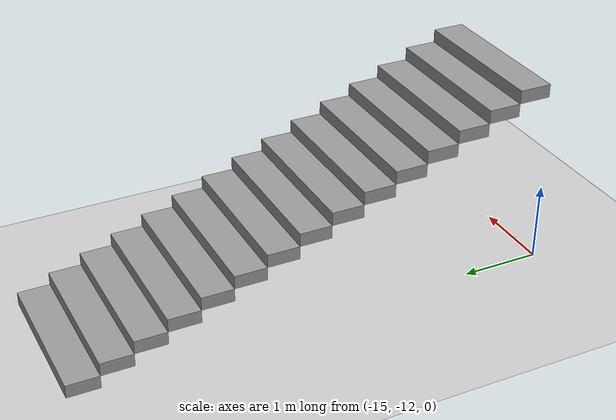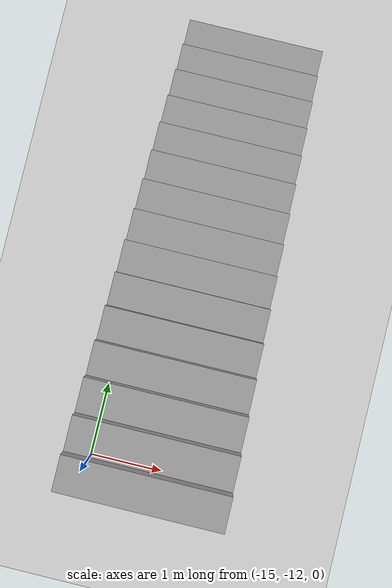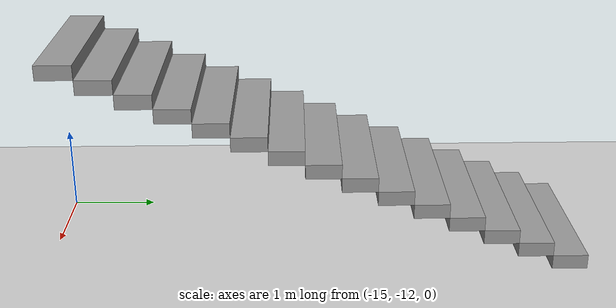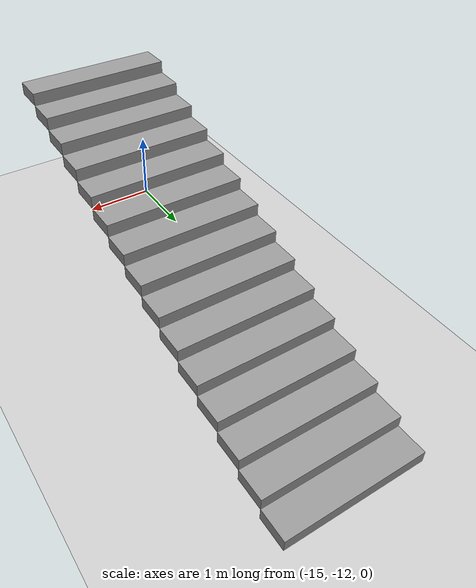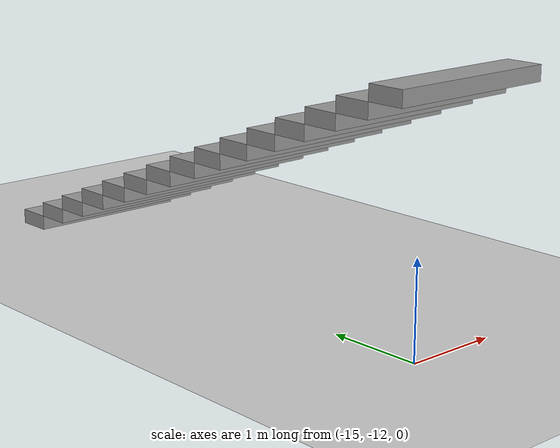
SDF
<sdf version="1.6">
 <world name="default">
  <model name="ground_plane">
   <static>1</static>
   <link name="link">
    <collision name="collision">
     <geometry><plane><normal>0 0 1</normal><size>100 100</size></plane></geometry>
     <surface>
      <contact><collide_bitmask>65535</collide_bitmask></contact>
      <friction><ode><mu>100</mu><mu2>50</mu2></ode></friction>
     </surface>
    </collision>
    <visual name="visual">
     <cast_shadows>0</cast_shadows>
     <geometry><plane><normal>0 0 1</normal><size>100 100</size></plane></geometry>
     <material>
      <script><uri>file://media/materials/scripts/gazebo.material</uri><name>Gazebo/Grey</name></script>
     </material>
    </visual>
   </link>
  </model>
  <model name="six_floor">
   <link name="Stairs_0">
    <visual name="Stairs_0_Visual_1">
     <pose>-15.7467 -8.23125 0.25 0 -0 0</pose>
     <geometry><box><size>1.9122 0.405242 0.166667</size></box></geometry>
     <material>
      <script><uri>file://media/materials/scripts/gazebo.material</uri><name>Gazebo/Grey</name></script>
      <ambient>1 1 1 1</ambient>
     </material>
     <meta><layer>0</layer></meta>
    </visual>
    <visual name="Stairs_0_Visual_0">
     <pose>-15.7467 -7.82601 0.083333 0 -0 0</pose>
     <geometry><box><size>1.9122 0.405242 0.166667</size></box></geometry>
     <material>
      <script><uri>file://media/materials/scripts/gazebo.material</uri><name>Gazebo/Grey</name></script>
      <ambient>1 1 1 1</ambient>
     </material>
     <meta><layer>0</layer></meta>
    </visual>
    <visual name="Stairs_0_Visual_2">
     <pose>-15.7467 -8.63649 0.416667 0 -0 0</pose>
     <geometry><box><size>1.9122 0.405242 0.166667</size></box></geometry>
     <material>
      <script><uri>file://media/materials/scripts/gazebo.material</uri><name>Gazebo/Grey</name></script>
      <ambient>1 1 1 1</ambient>
     </material>
     <meta><layer>0</layer></meta>
    </visual>
    <visual name="Stairs_0_Visual_3">
     <pose>-15.7467 -9.04173 0.583333 0 -0 0</pose>
     <geometry><box><size>1.9122 0.405242 0.166667</size></box></geometry>
     <material>
      <script><uri>file://media/materials/scripts/gazebo.material</uri><name>Gazebo/Grey</name></script>
      <ambient>1 1 1 1</ambient>
     </material>
     <meta><layer>0</layer></meta>
    </visual>
    <visual name="Stairs_0_Visual_4">
     <pose>-15.7467 -9.44697 0.75 0 -0 0</pose>
     <geometry><box><size>1.9122 0.405242 0.166667</size></box></geometry>
     <material>
      <script><uri>file://media/materials/scripts/gazebo.material</uri><name>Gazebo/Grey</name></script>
      <ambient>1 1 1 1</ambient>
     </material>
     <meta><layer>0</layer></meta>
    </visual>
    <visual name="Stairs_0_Visual_5">
     <pose>-15.7467 -9.85222 0.916667 0 -0 0</pose>
     <geometry><box><size>1.9122 0.405242 0.166667</size></box></geometry>
     <material>
      <script><uri>file://media/materials/scripts/gazebo.material</uri><name>Gazebo/Grey</name></script>
      <ambient>1 1 1 1</ambient>
     </material>
     <meta><layer>0</layer></meta>
    </visual>
    <visual name="Stairs_0_Visual_6">
     <pose>-15.7467 -10.2575 1.08333 0 -0 0</pose>
     <geometry><box><size>1.9122 0.405242 0.166667</size></box></geometry>
     <material>
      <script><uri>file://media/materials/scripts/gazebo.material</uri><name>Gazebo/Grey</name></script>
      <ambient>1 1 1 1</ambient>
     </material>
     <meta><layer>0</layer></meta>
    </visual>
    <visual name="Stairs_0_Visual_7">
     <pose>-15.7467 -10.6627 1.25 0 -0 0</pose>
     <geometry><box><size>1.9122 0.405242 0.166667</size></box></geometry>
     <material>
      <script><uri>file://media/materials/scripts/gazebo.material</uri><name>Gazebo/Grey</name></script>
      <ambient>1 1 1 1</ambient>
     </material>
     <meta><layer>0</layer></meta>
    </visual>
    <visual name="Stairs_0_Visual_8">
     <pose>-15.7467 -11.0679 1.41667 0 -0 0</pose>
     <geometry><box><size>1.9122 0.405242 0.166667</size></box></geometry>
     <material>
      <script><uri>file://media/materials/scripts/gazebo.material</uri><name>Gazebo/Grey</name></script>
      <ambient>1 1 1 1</ambient>
     </material>
     <meta><layer>0</layer></meta>
    </visual>
    <visual name="Stairs_0_Visual_9">
     <pose>-15.7467 -11.4732 1.58333 0 -0 0</pose>
     <geometry><box><size>1.9122 0.405242 0.166667</size></box></geometry>
     <material>
      <script><uri>file://media/materials/scripts/gazebo.material</uri><name>Gazebo/Grey</name></script>
      <ambient>1 1 1 1</ambient>
     </material>
     <meta><layer>0</layer></meta>
    </visual>
    <visual name="Stairs_0_Visual_10">
     <pose>-15.7467 -11.8784 1.75 0 -0 0</pose>
     <geometry><box><size>1.9122 0.405242 0.166667</size></box></geometry>
     <material>
      <script><uri>file://media/materials/scripts/gazebo.material</uri><name>Gazebo/Grey</name></script>
      <ambient>1 1 1 1</ambient>
     </material>
     <meta><layer>0</layer></meta>
    </visual>
    <visual name="Stairs_0_Visual_11">
     <pose>-15.7467 -12.2837 1.91667 0 -0 0</pose>
     <geometry><box><size>1.9122 0.405242 0.166667</size></box></geometry>
     <material>
      <script><uri>file://media/materials/scripts/gazebo.material</uri><name>Gazebo/Grey</name></script>
      <ambient>1 1 1 1</ambient>
     </material>
     <meta><layer>0</layer></meta>
    </visual>
    <visual name="Stairs_0_Visual_12">
     <pose>-15.7467 -12.6889 2.08333 0 -0 0</pose>
     <geometry><box><size>1.9122 0.405242 0.166667</size></box></geometry>
     <material>
      <script><uri>file://media/materials/scripts/gazebo.material</uri><name>Gazebo/Grey</name></script>
      <ambient>1 1 1 1</ambient>
     </material>
     <meta><layer>0</layer></meta>
    </visual>
    <visual name="Stairs_0_Visual_13">
     <pose>-15.7467 -13.0942 2.25 0 -0 0</pose>
     <geometry><box><size>1.9122 0.405242 0.166667</size></box></geometry>
     <material>
      <script><uri>file://media/materials/scripts/gazebo.material</uri><name>Gazebo/Grey</name></script>
      <ambient>1 1 1 1</ambient>
     </material>
     <meta><layer>0</layer></meta>
    </visual>
    <visual name="Stairs_0_Visual_14">
     <pose>-15.7467 -13.4994 2.41667 0 -0 0</pose>
     <geometry><box><size>1.9122 0.405242 0.166667</size></box></geometry>
     <material>
      <script><uri>file://media/materials/scripts/gazebo.material</uri><name>Gazebo/Grey</name></script>
      <ambient>1 1 1 1</ambient>
     </material>
     <meta><layer>0</layer></meta>
    </visual>
    <collision name="Stairs_0_Collision_1">
     <pose>-15.7467 -8.23125 0.25 0 -0 0</pose>
     <geometry><box><size>1.9122 0.405242 0.166667</size></box></geometry>
     <surface>
      <friction>
       <ode><mu>1</mu><mu2>1</mu2><fdir1>0 0 0</fdir1><slip1>0</slip1><slip2>0</slip2></ode>
       <torsional>
        <coefficient>1</coefficient>
        <patch_radius>0</patch_radius>
        <surface_radius>0</surface_radius>
        <use_patch_radius>1</use_patch_radius>
        <ode><slip>0</slip></ode>
       </torsional>
      </friction>
      <bounce><restitution_coefficient>0</restitution_coefficient><threshold>1e+06</threshold></bounce>
      <contact>
       <collide_without_contact>0</collide_without_contact>
       <collide_without_contact_bitmask>1</collide_without_contact_bitmask>
       <collide_bitmask>1</collide_bitmask>
       <ode>
        <soft_cfm>0</soft_cfm>
        <soft_erp>0.2</soft_erp>
        <kp>1e+13</kp>
        <kd>1</kd>
        <max_vel>0.01</max_vel>
        <min_depth>0</min_depth>
       </ode>
       <bullet>
        <split_impulse>1</split_impulse>
        <split_impulse_penetration_threshold>-0.01</split_impulse_penetration_threshold>
        <soft_cfm>0</soft_cfm>
        <soft_erp>0.2</soft_erp>
        <kp>1e+13</kp>
        <kd>1</kd>
       </bullet>
      </contact>
     </surface>
    </collision>
    <collision name="Stairs_0_Collision_0">
     <pose>-15.7467 -7.82601 0.083333 0 -0 0</pose>
     <geometry><box><size>1.9122 0.405242 0.166667</size></box></geometry>
     <surface>
      <friction>
       <ode><mu>1</mu><mu2>1</mu2><fdir1>0 0 0</fdir1><slip1>0</slip1><slip2>0</slip2></ode>
       <torsional>
        <coefficient>1</coefficient>
        <patch_radius>0</patch_radius>
        <surface_radius>0</surface_radius>
        <use_patch_radius>1</use_patch_radius>
        <ode><slip>0</slip></ode>
       </torsional>
      </friction>
      <bounce><restitution_coefficient>0</restitution_coefficient><threshold>1e+06</threshold></bounce>
      <contact>
       <collide_without_contact>0</collide_without_contact>
       <collide_without_contact_bitmask>1</collide_without_contact_bitmask>
       <collide_bitmask>1</collide_bitmask>
       <ode>
        <soft_cfm>0</soft_cfm>
        <soft_erp>0.2</soft_erp>
        <kp>1e+13</kp>
        <kd>1</kd>
        <max_vel>0.01</max_vel>
        <min_depth>0</min_depth>
       </ode>
       <bullet>
        <split_impulse>1</split_impulse>
        <split_impulse_penetration_threshold>-0.01</split_impulse_penetration_threshold>
        <soft_cfm>0</soft_cfm>
        <soft_erp>0.2</soft_erp>
        <kp>1e+13</kp>
        <kd>1</kd>
       </bullet>
      </contact>
     </surface>
    </collision>
    <collision name="Stairs_0_Collision_3">
     <pose>-15.7467 -9.04173 0.583333 0 -0 0</pose>
     <geometry><box><size>1.9122 0.405242 0.166667</size></box></geometry>
     <surface>
      <friction>
       <ode><mu>1</mu><mu2>1</mu2><fdir1>0 0 0</fdir1><slip1>0</slip1><slip2>0</slip2></ode>
       <torsional>
        <coefficient>1</coefficient>
        <patch_radius>0</patch_radius>
        <surface_radius>0</surface_radius>
        <use_patch_radius>1</use_patch_radius>
        <ode><slip>0</slip></ode>
       </torsional>
      </friction>
      <bounce><restitution_coefficient>0</restitution_coefficient><threshold>1e+06</threshold></bounce>
      <contact>
       <collide_without_contact>0</collide_without_contact>
       <collide_without_contact_bitmask>1</collide_without_contact_bitmask>
       <collide_bitmask>1</collide_bitmask>
       <ode>
        <soft_cfm>0</soft_cfm>
        <soft_erp>0.2</soft_erp>
        <kp>1e+13</kp>
        <kd>1</kd>
        <max_vel>0.01</max_vel>
        <min_depth>0</min_depth>
       </ode>
       <bullet>
        <split_impulse>1</split_impulse>
        <split_impulse_penetration_threshold>-0.01</split_impulse_penetration_threshold>
        <soft_cfm>0</soft_cfm>
        <soft_erp>0.2</soft_erp>
        <kp>1e+13</kp>
        <kd>1</kd>
       </bullet>
      </contact>
     </surface>
    </collision>
    <collision name="Stairs_0_Collision_2">
     <pose>-15.7467 -8.63649 0.416667 0 -0 0</pose>
     <geometry><box><size>1.9122 0.405242 0.166667</size></box></geometry>
     <surface>
      <friction>
       <ode><mu>1</mu><mu2>1</mu2><fdir1>0 0 0</fdir1><slip1>0</slip1><slip2>0</slip2></ode>
       <torsional>
        <coefficient>1</coefficient>
        <patch_radius>0</patch_radius>
        <surface_radius>0</surface_radius>
        <use_patch_radius>1</use_patch_radius>
        <ode><slip>0</slip></ode>
       </torsional>
      </friction>
      <bounce><restitution_coefficient>0</restitution_coefficient><threshold>1e+06</threshold></bounce>
      <contact>
       <collide_without_contact>0</collide_without_contact>
       <collide_without_contact_bitmask>1</collide_without_contact_bitmask>
       <collide_bitmask>1</collide_bitmask>
       <ode>
        <soft_cfm>0</soft_cfm>
        <soft_erp>0.2</soft_erp>
        <kp>1e+13</kp>
        <kd>1</kd>
        <max_vel>0.01</max_vel>
        <min_depth>0</min_depth>
       </ode>
       <bullet>
        <split_impulse>1</split_impulse>
        <split_impulse_penetration_threshold>-0.01</split_impulse_penetration_threshold>
        <soft_cfm>0</soft_cfm>
        <soft_erp>0.2</soft_erp>
        <kp>1e+13</kp>
        <kd>1</kd>
       </bullet>
      </contact>
     </surface>
    </collision>
    <collision name="Stairs_0_Collision_4">
     <pose>-15.7467 -9.44697 0.75 0 -0 0</pose>
     <geometry><box><size>1.9122 0.405242 0.166667</size></box></geometry>
     <surface>
      <friction>
       <ode><mu>1</mu><mu2>1</mu2><fdir1>0 0 0</fdir1><slip1>0</slip1><slip2>0</slip2></ode>
       <torsional>
        <coefficient>1</coefficient>
        <patch_radius>0</patch_radius>
        <surface_radius>0</surface_radius>
        <use_patch_radius>1</use_patch_radius>
        <ode><slip>0</slip></ode>
       </torsional>
      </friction>
      <bounce><restitution_coefficient>0</restitution_coefficient><threshold>1e+06</threshold></bounce>
      <contact>
       <collide_without_contact>0</collide_without_contact>
       <collide_without_contact_bitmask>1</collide_without_contact_bitmask>
       <collide_bitmask>1</collide_bitmask>
       <ode>
        <soft_cfm>0</soft_cfm>
        <soft_erp>0.2</soft_erp>
        <kp>1e+13</kp>
        <kd>1</kd>
        <max_vel>0.01</max_vel>
        <min_depth>0</min_depth>
       </ode>
       <bullet>
        <split_impulse>1</split_impulse>
        <split_impulse_penetration_threshold>-0.01</split_impulse_penetration_threshold>
        <soft_cfm>0</soft_cfm>
        <soft_erp>0.2</soft_erp>
        <kp>1e+13</kp>
        <kd>1</kd>
       </bullet>
      </contact>
     </surface>
    </collision>
    <collision name="Stairs_0_Collision_7">
     <pose>-15.7467 -10.6627 1.25 0 -0 0</pose>
     <geometry><box><size>1.9122 0.405242 0.166667</size></box></geometry>
     <surface>
      <friction>
       <ode><mu>1</mu><mu2>1</mu2><fdir1>0 0 0</fdir1><slip1>0</slip1><slip2>0</slip2></ode>
       <torsional>
        <coefficient>1</coefficient>
        <patch_radius>0</patch_radius>
        <surface_radius>0</surface_radius>
        <use_patch_radius>1</use_patch_radius>
        <ode><slip>0</slip></ode>
       </torsional>
      </friction>
      <bounce><restitution_coefficient>0</restitution_coefficient><threshold>1e+06</threshold></bounce>
      <contact>
       <collide_without_contact>0</collide_without_contact>
       <collide_without_contact_bitmask>1</collide_without_contact_bitmask>
       <collide_bitmask>1</collide_bitmask>
       <ode>
        <soft_cfm>0</soft_cfm>
        <soft_erp>0.2</soft_erp>
        <kp>1e+13</kp>
        <kd>1</kd>
        <max_vel>0.01</max_vel>
        <min_depth>0</min_depth>
       </ode>
       <bullet>
        <split_impulse>1</split_impulse>
        <split_impulse_penetration_threshold>-0.01</split_impulse_penetration_threshold>
        <soft_cfm>0</soft_cfm>
        <soft_erp>0.2</soft_erp>
        <kp>1e+13</kp>
        <kd>1</kd>
       </bullet>
      </contact>
     </surface>
    </collision>
    <collision name="Stairs_0_Collision_5">
     <pose>-15.7467 -9.85222 0.916667 0 -0 0</pose>
     <geometry><box><size>1.9122 0.405242 0.166667</size></box></geometry>
     <surface>
      <friction>
       <ode><mu>1</mu><mu2>1</mu2><fdir1>0 0 0</fdir1><slip1>0</slip1><slip2>0</slip2></ode>
       <torsional>
        <coefficient>1</coefficient>
        <patch_radius>0</patch_radius>
        <surface_radius>0</surface_radius>
        <use_patch_radius>1</use_patch_radius>
        <ode><slip>0</slip></ode>
       </torsional>
      </friction>
      <bounce><restitution_coefficient>0</restitution_coefficient><threshold>1e+06</threshold></bounce>
      <contact>
       <collide_without_contact>0</collide_without_contact>
       <collide_without_contact_bitmask>1</collide_without_contact_bitmask>
       <collide_bitmask>1</collide_bitmask>
       <ode>
        <soft_cfm>0</soft_cfm>
        <soft_erp>0.2</soft_erp>
        <kp>1e+13</kp>
        <kd>1</kd>
        <max_vel>0.01</max_vel>
        <min_depth>0</min_depth>
       </ode>
       <bullet>
        <split_impulse>1</split_impulse>
        <split_impulse_penetration_threshold>-0.01</split_impulse_penetration_threshold>
        <soft_cfm>0</soft_cfm>
        <soft_erp>0.2</soft_erp>
        <kp>1e+13</kp>
        <kd>1</kd>
       </bullet>
      </contact>
     </surface>
    </collision>
    <collision name="Stairs_0_Collision_6">
     <pose>-15.7467 -10.2575 1.08333 0 -0 0</pose>
     <geometry><box><size>1.9122 0.405242 0.166667</size></box></geometry>
     <surface>
      <friction>
       <ode><mu>1</mu><mu2>1</mu2><fdir1>0 0 0</fdir1><slip1>0</slip1><slip2>0</slip2></ode>
       <torsional>
        <coefficient>1</coefficient>
        <patch_radius>0</patch_radius>
        <surface_radius>0</surface_radius>
        <use_patch_radius>1</use_patch_radius>
        <ode><slip>0</slip></ode>
       </torsional>
      </friction>
      <bounce><restitution_coefficient>0</restitution_coefficient><threshold>1e+06</threshold></bounce>
      <contact>
       <collide_without_contact>0</collide_without_contact>
       <collide_without_contact_bitmask>1</collide_without_contact_bitmask>
       <collide_bitmask>1</collide_bitmask>
       <ode>
        <soft_cfm>0</soft_cfm>
        <soft_erp>0.2</soft_erp>
        <kp>1e+13</kp>
        <kd>1</kd>
        <max_vel>0.01</max_vel>
        <min_depth>0</min_depth>
       </ode>
       <bullet>
        <split_impulse>1</split_impulse>
        <split_impulse_penetration_threshold>-0.01</split_impulse_penetration_threshold>
        <soft_cfm>0</soft_cfm>
        <soft_erp>0.2</soft_erp>
        <kp>1e+13</kp>
        <kd>1</kd>
       </bullet>
      </contact>
     </surface>
    </collision>
    <collision name="Stairs_0_Collision_8">
     <pose>-15.7467 -11.0679 1.41667 0 -0 0</pose>
     <geometry><box><size>1.9122 0.405242 0.166667</size></box></geometry>
     <surface>
      <friction>
       <ode><mu>1</mu><mu2>1</mu2><fdir1>0 0 0</fdir1><slip1>0</slip1><slip2>0</slip2></ode>
       <torsional>
        <coefficient>1</coefficient>
        <patch_radius>0</patch_radius>
        <surface_radius>0</surface_radius>
        <use_patch_radius>1</use_patch_radius>
        <ode><slip>0</slip></ode>
       </torsional>
      </friction>
      <bounce><restitution_coefficient>0</restitution_coefficient><threshold>1e+06</threshold></bounce>
      <contact>
       <collide_without_contact>0</collide_without_contact>
       <collide_without_contact_bitmask>1</collide_without_contact_bitmask>
       <collide_bitmask>1</collide_bitmask>
       <ode>
        <soft_cfm>0</soft_cfm>
        <soft_erp>0.2</soft_erp>
        <kp>1e+13</kp>
        <kd>1</kd>
        <max_vel>0.01</max_vel>
        <min_depth>0</min_depth>
       </ode>
       <bullet>
        <split_impulse>1</split_impulse>
        <split_impulse_penetration_threshold>-0.01</split_impulse_penetration_threshold>
        <soft_cfm>0</soft_cfm>
        <soft_erp>0.2</soft_erp>
        <kp>1e+13</kp>
        <kd>1</kd>
       </bullet>
      </contact>
     </surface>
    </collision>
    <collision name="Stairs_0_Collision_9">
     <pose>-15.7467 -11.4732 1.58333 0 -0 0</pose>
     <geometry><box><size>1.9122 0.405242 0.166667</size></box></geometry>
     <surface>
      <friction>
       <ode><mu>1</mu><mu2>1</mu2><fdir1>0 0 0</fdir1><slip1>0</slip1><slip2>0</slip2></ode>
       <torsional>
        <coefficient>1</coefficient>
        <patch_radius>0</patch_radius>
        <surface_radius>0</surface_radius>
        <use_patch_radius>1</use_patch_radius>
        <ode><slip>0</slip></ode>
       </torsional>
      </friction>
      <bounce><restitution_coefficient>0</restitution_coefficient><threshold>1e+06</threshold></bounce>
      <contact>
       <collide_without_contact>0</collide_without_contact>
       <collide_without_contact_bitmask>1</collide_without_contact_bitmask>
       <collide_bitmask>1</collide_bitmask>
       <ode>
        <soft_cfm>0</soft_cfm>
        <soft_erp>0.2</soft_erp>
        <kp>1e+13</kp>
        <kd>1</kd>
        <max_vel>0.01</max_vel>
        <min_depth>0</min_depth>
       </ode>
       <bullet>
        <split_impulse>1</split_impulse>
        <split_impulse_penetration_threshold>-0.01</split_impulse_penetration_threshold>
        <soft_cfm>0</soft_cfm>
        <soft_erp>0.2</soft_erp>
        <kp>1e+13</kp>
        <kd>1</kd>
       </bullet>
      </contact>
     </surface>
    </collision>
    <collision name="Stairs_0_Collision_10">
     <pose>-15.7467 -11.8784 1.75 0 -0 0</pose>
     <geometry><box><size>1.9122 0.405242 0.166667</size></box></geometry>
     <surface>
      <friction>
       <ode><mu>1</mu><mu2>1</mu2><fdir1>0 0 0</fdir1><slip1>0</slip1><slip2>0</slip2></ode>
       <torsional>
        <coefficient>1</coefficient>
        <patch_radius>0</patch_radius>
        <surface_radius>0</surface_radius>
        <use_patch_radius>1</use_patch_radius>
        <ode><slip>0</slip></ode>
       </torsional>
      </friction>
      <bounce><restitution_coefficient>0</restitution_coefficient><threshold>1e+06</threshold></bounce>
      <contact>
       <collide_without_contact>0</collide_without_contact>
       <collide_without_contact_bitmask>1</collide_without_contact_bitmask>
       <collide_bitmask>1</collide_bitmask>
       <ode>
        <soft_cfm>0</soft_cfm>
        <soft_erp>0.2</soft_erp>
        <kp>1e+13</kp>
        <kd>1</kd>
        <max_vel>0.01</max_vel>
        <min_depth>0</min_depth>
       </ode>
       <bullet>
        <split_impulse>1</split_impulse>
        <split_impulse_penetration_threshold>-0.01</split_impulse_penetration_threshold>
        <soft_cfm>0</soft_cfm>
        <soft_erp>0.2</soft_erp>
        <kp>1e+13</kp>
        <kd>1</kd>
       </bullet>
      </contact>
     </surface>
    </collision>
    <collision name="Stairs_0_Collision_11">
     <pose>-15.7467 -12.2837 1.91667 0 -0 0</pose>
     <geometry><box><size>1.9122 0.405242 0.166667</size></box></geometry>
     <surface>
      <friction>
       <ode><mu>1</mu><mu2>1</mu2><fdir1>0 0 0</fdir1><slip1>0</slip1><slip2>0</slip2></ode>
       <torsional>
        <coefficient>1</coefficient>
        <patch_radius>0</patch_radius>
        <surface_radius>0</surface_radius>
        <use_patch_radius>1</use_patch_radius>
        <ode><slip>0</slip></ode>
       </torsional>
      </friction>
      <bounce><restitution_coefficient>0</restitution_coefficient><threshold>1e+06</threshold></bounce>
      <contact>
       <collide_without_contact>0</collide_without_contact>
       <collide_without_contact_bitmask>1</collide_without_contact_bitmask>
       <collide_bitmask>1</collide_bitmask>
       <ode>
        <soft_cfm>0</soft_cfm>
        <soft_erp>0.2</soft_erp>
        <kp>1e+13</kp>
        <kd>1</kd>
        <max_vel>0.01</max_vel>
        <min_depth>0</min_depth>
       </ode>
       <bullet>
        <split_impulse>1</split_impulse>
        <split_impulse_penetration_threshold>-0.01</split_impulse_penetration_threshold>
        <soft_cfm>0</soft_cfm>
        <soft_erp>0.2</soft_erp>
        <kp>1e+13</kp>
        <kd>1</kd>
       </bullet>
      </contact>
     </surface>
    </collision>
    <collision name="Stairs_0_Collision_12">
     <pose>-15.7467 -12.6889 2.08333 0 -0 0</pose>
     <geometry><box><size>1.9122 0.405242 0.166667</size></box></geometry>
     <surface>
      <friction>
       <ode><mu>1</mu><mu2>1</mu2><fdir1>0 0 0</fdir1><slip1>0</slip1><slip2>0</slip2></ode>
       <torsional>
        <coefficient>1</coefficient>
        <patch_radius>0</patch_radius>
        <surface_radius>0</surface_radius>
        <use_patch_radius>1</use_patch_radius>
        <ode><slip>0</slip></ode>
       </torsional>
      </friction>
      <bounce><restitution_coefficient>0</restitution_coefficient><threshold>1e+06</threshold></bounce>
      <contact>
       <collide_without_contact>0</collide_without_contact>
       <collide_without_contact_bitmask>1</collide_without_contact_bitmask>
       <collide_bitmask>1</collide_bitmask>
       <ode>
        <soft_cfm>0</soft_cfm>
        <soft_erp>0.2</soft_erp>
        <kp>1e+13</kp>
        <kd>1</kd>
        <max_vel>0.01</max_vel>
        <min_depth>0</min_depth>
       </ode>
       <bullet>
        <split_impulse>1</split_impulse>
        <split_impulse_penetration_threshold>-0.01</split_impulse_penetration_threshold>
        <soft_cfm>0</soft_cfm>
        <soft_erp>0.2</soft_erp>
        <kp>1e+13</kp>
        <kd>1</kd>
       </bullet>
      </contact>
     </surface>
    </collision>
    <collision name="Stairs_0_Collision_13">
     <pose>-15.7467 -13.0942 2.25 0 -0 0</pose>
     <geometry><box><size>1.9122 0.405242 0.166667</size></box></geometry>
     <surface>
      <friction>
       <ode><mu>1</mu><mu2>1</mu2><fdir1>0 0 0</fdir1><slip1>0</slip1><slip2>0</slip2></ode>
       <torsional>
        <coefficient>1</coefficient>
        <patch_radius>0</patch_radius>
        <surface_radius>0</surface_radius>
        <use_patch_radius>1</use_patch_radius>
        <ode><slip>0</slip></ode>
       </torsional>
      </friction>
      <bounce><restitution_coefficient>0</restitution_coefficient><threshold>1e+06</threshold></bounce>
      <contact>
       <collide_without_contact>0</collide_without_contact>
       <collide_without_contact_bitmask>1</collide_without_contact_bitmask>
       <collide_bitmask>1</collide_bitmask>
       <ode>
        <soft_cfm>0</soft_cfm>
        <soft_erp>0.2</soft_erp>
        <kp>1e+13</kp>
        <kd>1</kd>
        <max_vel>0.01</max_vel>
        <min_depth>0</min_depth>
       </ode>
       <bullet>
        <split_impulse>1</split_impulse>
        <split_impulse_penetration_threshold>-0.01</split_impulse_penetration_threshold>
        <soft_cfm>0</soft_cfm>
        <soft_erp>0.2</soft_erp>
        <kp>1e+13</kp>
        <kd>1</kd>
       </bullet>
      </contact>
     </surface>
    </collision>
    <collision name="Stairs_0_Collision_14">
     <pose>-15.7467 -13.4994 2.41667 0 -0 0</pose>
     <geometry><box><size>1.9122 0.405242 0.166667</size></box></geometry>
     <surface>
      <friction>
       <ode><mu>1</mu><mu2>1</mu2><fdir1>0 0 0</fdir1><slip1>0</slip1><slip2>0</slip2></ode>
       <torsional>
        <coefficient>1</coefficient>
        <patch_radius>0</patch_radius>
        <surface_radius>0</surface_radius>
        <use_patch_radius>1</use_patch_radius>
        <ode><slip>0</slip></ode>
       </torsional>
      </friction>
      <bounce><restitution_coefficient>0</restitution_coefficient><threshold>1e+06</threshold></bounce>
      <contact>
       <collide_without_contact>0</collide_without_contact>
       <collide_without_contact_bitmask>1</collide_without_contact_bitmask>
       <collide_bitmask>1</collide_bitmask>
       <ode>
        <soft_cfm>0</soft_cfm>
        <soft_erp>0.2</soft_erp>
        <kp>1e+13</kp>
        <kd>1</kd>
        <max_vel>0.01</max_vel>
        <min_depth>0</min_depth>
       </ode>
       <bullet>
        <split_impulse>1</split_impulse>
        <split_impulse_penetration_threshold>-0.01</split_impulse_penetration_threshold>
        <soft_cfm>0</soft_cfm>
        <soft_erp>0.2</soft_erp>
        <kp>1e+13</kp>
        <kd>1</kd>
       </bullet>
      </contact>
     </surface>
    </collision>
   </link>
   <static>1</static>
   <pose>1.59766 1.83874 0 0 -0 0</pose>
  </model>
 </world>
</sdf>
